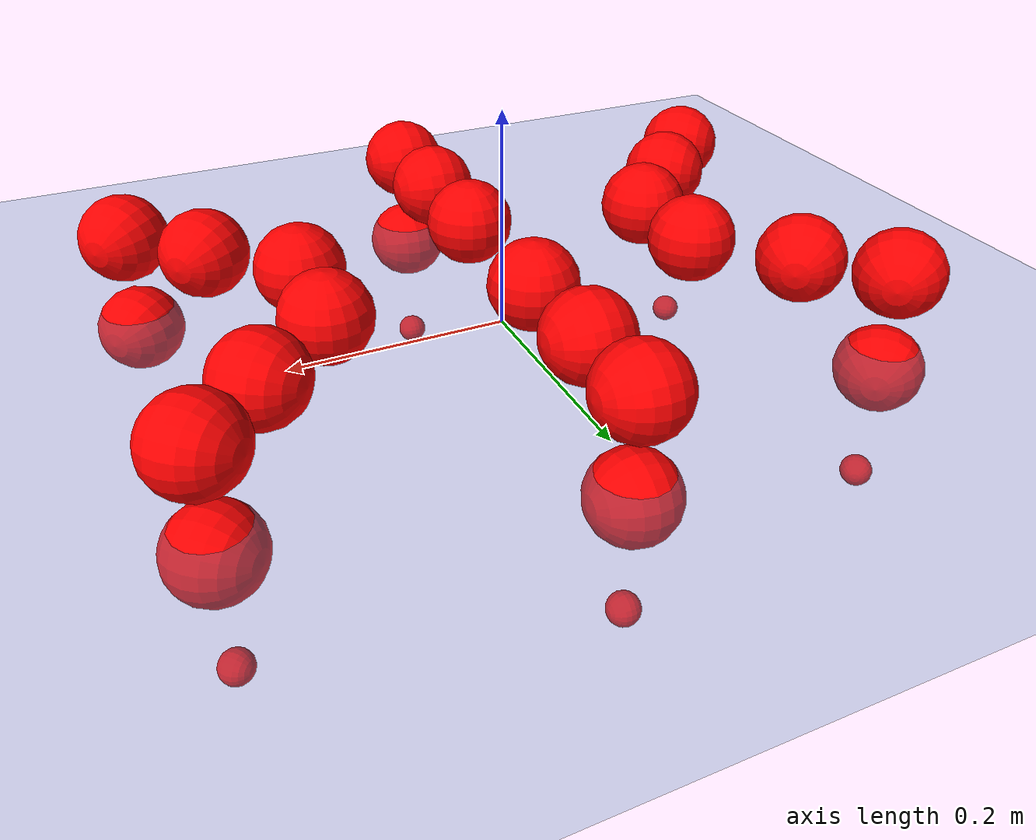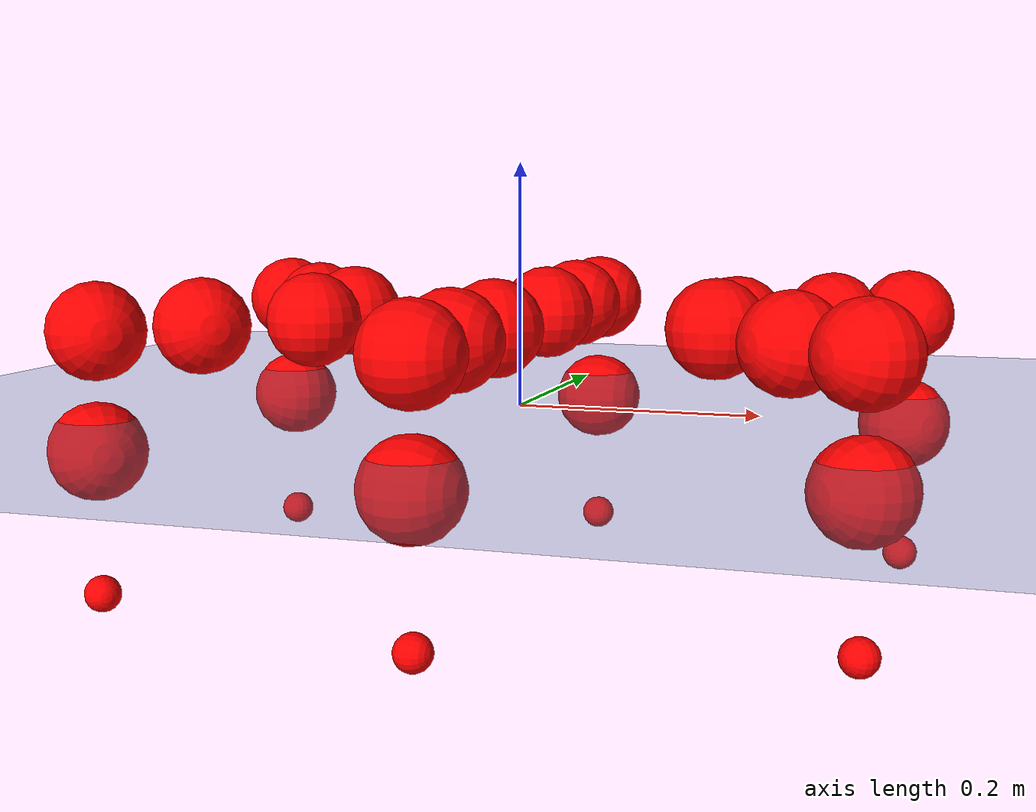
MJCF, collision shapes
<mujoco model="Golem">
  <compiler angle="radian" assetdir="assets" balanceinertia="true" inertiafromgeom="false"/>

  <option timestep="0.005" density="1.2" viscosity="2e-05"/>

  <size nkey="1"/>

  <visual>
    <quality shadowsize="8192"/>
    <map shadowclip="0.5"/>
  </visual>

  <default>
    <default class="/">
      <joint armature="0.01" damping="0.01" frictionloss="0.01"/>
      <geom contype="0" conaffinity="0" group="1" solref="-1000 -80"/>
      <site size="0.01 0.005 0.005" group="5"/>
      <general forcelimited="true" biastype="affine" gainprm="25" biasprm="0 -25 -0.5"/>
      <default class="visual">
        <geom type="mesh" group="2"/>
      </default>
      <default class="collision">
        <geom group="3"/>
      </default>
      <default class="foot">
        <geom size="0.01 0 0" condim="6" group="4" priority="1" solimp="0.015 1 0.01"/>
      </default>
      <default class="reward_collision_sphere">
        <geom group="5" rgba="1 0 0 1"/>
      </default>
    </default>
  </default>

  <asset>
    <texture type="skybox" colorspace="auto" name="//unnamed_texture_0" builtin="gradient" rgb1="0.95 0.95 0.95" rgb2="0.95 0.95 0.95" width="100" height="600"/>
    <texture type="2d" colorspace="auto" name="texplane" builtin="checker" rgb1="0.345 0.575 0.748" rgb2="0.345 0.575 0.748" markrgb="1 1 1" width="512" height="512"/>
    <material name="MatPlane" class="/" texture="texplane" texuniform="true" texrepeat="2 2" specular="0.9"/>
    <mesh name="body" class="/" file="body.stl" scale="0.001 0.001 0.001"/>
    <mesh name="coxa" class="/" file="coxa.stl" scale="0.001 0.001 0.001"/>
    <mesh name="femur" class="/" file="femur.stl" scale="0.001 0.001 0.001"/>
    <mesh name="tibia" class="/" file="tibia.stl" scale="0.001 0.001 0.001"/>
    <mesh name="tarsus" class="/" file="tarsus.stl" scale="0.001 0.001 0.001"/>
  </asset>

  <worldbody>
    <geom name="floor" class="/" size="100 100 0.125" type="plane" group="0" material="MatPlane"/>
    <light name="toplight_shadow" class="/" pos="0 0 5" dir="0.0990148 0.0990148 -0.990148" type="directional" ambient="0.04 0.04 0.04" diffuse="0.55 0.55 0.55" specular="0.12 0.12 0.12"/>
    <light name="toplight_fill" class="/" pos="0 0 5" dir="0.0990148 0.0990148 -0.990148" type="directional" castshadow="false" ambient="0.04 0.04 0.04" diffuse="0.3 0.3 0.3" specular="0.08 0.08 0.08"/>
    <body name="trunk" pos="0.00175916 -0.000446202 -0.00069285" quat="1 1.58079e-05 5.51082e-06 1.59253e-05">
      <inertial pos="-8.13598e-05 -0.0001102 -0.00301949" quat="0.999999 -0.000308906 -0.000924034 -0.000531458" mass="3.47804" diaginertia="0.0143782 0.00257811 0.0172912"/>
      <joint name="//unnamed_joint_0" type="free"/>
      <geom name="//unnamed_geom_1" class="/" pos="0 0 0.0714893" quat="1 0 0 0" type="mesh" rgba="0.9 0.9 0.9 1" mesh="body"/>
      <site name="imu" class="/" pos="0.147328 0.00629864 0.107967" size="0.00987301"/>
      <camera name="track" class="/" pos="0 -1.53416 0" quat="0.707107 0.707107 0 0" mode="trackcom"/>
      <camera name="ego_camera" class="/" pos="0.140115 0 0.111702" quat="-0.5 -0.5 0.5 0.5"/>
      <body name="coxa_RR" pos="-0.192947 -0.0639759 0.0708041" quat="0.382722 0.000210874 5.30575e-05 -0.923864">
        <inertial pos="0.000106992 -0.00191447 0.00155734" quat="1 -0.000293777 0.00086496 0.000330382" mass="0.187837" diaginertia="0.0145336 0.00265014 0.0172903"/>
        <joint name="coxa_joint_RR" class="/" pos="0 0 0" axis="0.00618732 0.00366013 -0.999974" range="-3.14041 3.14117" armature="0.00942097" damping="0" frictionloss="0.00991987"/>
        <geom name="//unnamed_geom_2" class="/" type="mesh" rgba="0.2 0.2 0.2 1" mesh="coxa"/>
        <geom name="//unnamed_geom_3" class="reward_collision_sphere" size="0.0394921" pos="-0.0323342 0 0"/>
        <body name="femur_RR" pos="0.0628185 0.000627308 -0.000858534" quat="0.500106 -0.499854 0.50001 0.50003">
          <inertial pos="0.000896348 0.000902906 0.000305044" quat="0.999992 0.00393811 -2.81459e-05 -0.000755133" mass="0.192373" diaginertia="0.0145409 0.00263093 0.0178533"/>
          <joint name="femur_joint_RR" class="/" pos="0 0 0" axis="-0.00444004 -0.000230398 -0.99999" range="-3.16366 3.13622" armature="0.0101393" damping="0.000498652" frictionloss="0.0103422"/>
          <geom name="//unnamed_geom_4" class="/" type="mesh" rgba="0.9 0.9 0.9 1" mesh="femur"/>
          <geom name="//unnamed_geom_5" class="reward_collision_sphere" size="0.0394921"/>
          <body name="tibia_RR" pos="1.64471e-05 -0.0853732 0.00231645" quat="0.000603729 1 0.000178019 -0.000579357">
            <inertial pos="-0.00115542 0.000401003 5.2302e-05" quat="0.999999 -0.000515186 -0.000872352 0.000922742" mass="0.194957" diaginertia="0.0145211 0.0026899 0.0175376"/>
            <joint name="tibia_joint_RR" class="/" pos="0 0 0" axis="-0.000413736 -0.00425089 0.999991" range="-3.15867 3.13191" armature="0.00974624" damping="0.00326543" frictionloss="0.00990266"/>
            <geom name="//unnamed_geom_6" class="/" type="mesh" rgba="0.2 0.2 0.2 1" mesh="tibia"/>
            <geom name="//unnamed_geom_7" class="reward_collision_sphere" size="0.0394921"/>
            <body name="tarsus_RR" pos="0.0954798 0.00149651 0.000976953" quat="1 2.78354e-05 2.04111e-05 -3.51642e-05">
              <inertial pos="0.0670078 0.00048211 -0.000951429" quat="0.49857 0.501708 0.500513 0.499202" mass="0.191203" diaginertia="0.01438 0.00261443 0.0172154"/>
              <joint name="tarsus_joint_RR" class="/" pos="0 0 0" axis="-0.006736 0.00108451 0.999977" stiffness="0.00120382" range="-3.16134 3.1351" armature="0.0101741" damping="0.0388628" frictionloss="0.0103085"/>
              <geom name="//unnamed_geom_8" class="/" type="mesh" rgba="0.9 0.9 0.9 1" mesh="tarsus"/>
              <geom name="foot_1" class="foot" size="0.00976166" pos="0.120714 0 0" quat="0 -0.707107 0 0.707107"/>
              <geom name="//unnamed_geom_10" class="reward_collision_sphere" size="0.0394921"/>
              <geom name="//unnamed_geom_11" class="reward_collision_sphere" size="0.0148095" pos="0.115864 0 0"/>
              <site name="foot_1" class="foot" pos="0.120714 0 0" quat="0 -0.707107 0 0.707107" size="0.00987301"/>
            </body>
          </body>
        </body>
      </body>
      <body name="coxa_RM" pos="-0.000518464 -0.102945 0.0717174" quat="0.707051 7.13478e-05 3.74008e-05 -0.707162">
        <inertial pos="0.000491817 0.000150364 0.00162836" quat="0.999989 -0.00126815 -0.000390768 -0.00452581" mass="0.19504" diaginertia="0.014694 0.00259639 0.017404"/>
        <joint name="coxa_joint_RM" class="/" pos="0 0 0" axis="0.00188747 0.00192567 -0.999996" range="-3.11861 3.14205" armature="0.0098139" damping="0.00615906" frictionloss="0.00878282"/>
        <geom name="//unnamed_geom_12" class="/" type="mesh" rgba="0.2 0.2 0.2 1" mesh="coxa"/>
        <geom name="//unnamed_geom_13" class="reward_collision_sphere" size="0.0394921" pos="-0.0323342 0 0"/>
        <body name="femur_RM" pos="0.0623952 0.000300456 0.000233383" quat="0.499515 -0.500122 0.499781 0.500582">
          <inertial pos="-0.000326637 0.000799284 0.000191204" quat="0.999989 -0.00381357 -0.000936295 -0.00272086" mass="0.197345" diaginertia="0.0149172 0.00269355 0.0178085"/>
          <joint name="femur_joint_RM" class="/" pos="0 0 0" axis="-0.00122161 0.00247521 -0.999996" range="-3.12975 3.13752" armature="0.0103284" damping="0.0110471" frictionloss="0.00982609"/>
          <geom name="//unnamed_geom_14" class="/" type="mesh" rgba="0.9 0.9 0.9 1" mesh="femur"/>
          <geom name="//unnamed_geom_15" class="reward_collision_sphere" size="0.0394921"/>
          <body name="tibia_RM" pos="0.000596525 -0.0822157 0.00135875" quat="-1.55535e-05 1 3.33528e-05 -9.60987e-05">
            <inertial pos="0.000116343 -0.00208761 -0.000168637" quat="0.999978 0.000909087 -0.00118562 0.00651336" mass="0.191876" diaginertia="0.0147793 0.0027558 0.0175348"/>
            <joint name="tibia_joint_RM" class="/" pos="0 0 0" axis="0.000643152 -0.00145767 0.999999" range="-3.1667 3.18281" armature="0.00981098" damping="0.0122786" frictionloss="0.00972339"/>
            <geom name="//unnamed_geom_16" class="/" type="mesh" rgba="0.2 0.2 0.2 1" mesh="tibia"/>
            <geom name="//unnamed_geom_17" class="reward_collision_sphere" size="0.0394921"/>
            <body name="tarsus_RM" pos="0.0941767 0.000259007 0.00045589" quat="1 -7.7006e-05 0.000153835 5.5824e-05">
              <inertial pos="0.0641771 0.000572882 0.000784803" quat="0.504567 0.492205 0.500965 0.502176" mass="0.196947" diaginertia="0.0143216 0.00267034 0.0172529"/>
              <joint name="tarsus_joint_RM" class="/" pos="0 0 0" axis="-2.5818e-05 3.06501e-05 1" range="-3.1436 3.1514" armature="0.0093865" damping="0.00559017" frictionloss="0.00992746"/>
              <geom name="//unnamed_geom_18" class="/" type="mesh" rgba="0.9 0.9 0.9 1" mesh="tarsus"/>
              <geom name="foot_2" class="foot" size="0.00966569" pos="0.120714 0 0" quat="0 -0.707107 0 0.707107"/>
              <geom name="//unnamed_geom_20" class="reward_collision_sphere" size="0.0394921"/>
              <geom name="//unnamed_geom_21" class="reward_collision_sphere" size="0.0148095" pos="0.115864 0 0"/>
              <site name="foot_2" class="foot" pos="0.120714 0 0" quat="0 -0.707107 0 0.707107" size="0.00987301"/>
            </body>
          </body>
        </body>
      </body>
      <body name="coxa_RF" pos="0.192402 -0.0619692 0.073494" quat="0.923776 0.000209332 1.79809e-05 -0.382933">
        <inertial pos="0.00085182 -0.000660967 0.000132901" quat="1 -2.21323e-05 -0.000318555 0.000260395" mass="0.193268" diaginertia="0.0145215 0.00263506 0.0176875"/>
        <joint name="coxa_joint_RF" class="/" pos="0 0 0" axis="0.00380956 0.00369609 -0.999986" range="-3.14165 3.12955" armature="0.0103711" damping="0.0121291" frictionloss="0.0100277"/>
        <geom name="//unnamed_geom_22" class="/" type="mesh" rgba="0.2 0.2 0.2 1" mesh="coxa"/>
        <geom name="//unnamed_geom_23" class="reward_collision_sphere" size="0.0394921" pos="-0.0323342 0 0"/>
        <body name="femur_RF" pos="0.063536 0.000708467 -0.00195414" quat="0.500186 -0.500106 0.499625 0.500083">
          <inertial pos="-0.000868875 -4.59693e-05 -4.08052e-05" quat="0.999988 -0.00263166 -0.00221579 -0.00353423" mass="0.194402" diaginertia="0.0145424 0.00269743 0.0179224"/>
          <joint name="femur_joint_RF" class="/" pos="0 0 0" axis="-0.000651541 0.000187241 -1" range="-3.17663 3.12141" armature="0.00928" damping="0.0126253" frictionloss="0.0101704"/>
          <geom name="//unnamed_geom_24" class="/" type="mesh" rgba="0.9 0.9 0.9 1" mesh="femur"/>
          <geom name="//unnamed_geom_25" class="reward_collision_sphere" size="0.0394921"/>
          <body name="tibia_RF" pos="-0.00123502 -0.0836009 0.00173569" quat="-7.03967e-06 1 -5.34191e-06 4.5335e-06">
            <inertial pos="-0.00190707 0.000144741 0.00021774" quat="1 6.14978e-05 0.000142721 0.000244639" mass="0.195765" diaginertia="0.0145947 0.00264129 0.0174069"/>
            <joint name="tibia_joint_RF" class="/" pos="0 0 0" axis="-0.00138642 -0.00763 0.99997" range="-3.12886 3.09995" armature="0.0103074" damping="0.0121593" frictionloss="0.00991938"/>
            <geom name="//unnamed_geom_26" class="/" type="mesh" rgba="0.2 0.2 0.2 1" mesh="tibia"/>
            <geom name="//unnamed_geom_27" class="reward_collision_sphere" size="0.0394921"/>
            <body name="tarsus_RF" pos="0.0941944 0.00143276 0.00136543" quat="1 -9.12722e-05 0.000504233 0.000722599">
              <inertial pos="0.0648214 5.411e-06 -0.000238136" quat="0.500025 0.500019 0.500272 0.499684" mass="0.190901" diaginertia="0.0145395 0.00265237 0.0172476"/>
              <joint name="tarsus_joint_RF" class="/" pos="0 0 0" axis="-0.00233448 -0.000694094 0.999997" range="-3.11968 3.14703" armature="0.00967137" damping="0.000805147" frictionloss="0.0102686"/>
              <geom name="//unnamed_geom_28" class="/" type="mesh" rgba="0.9 0.9 0.9 1" mesh="tarsus"/>
              <geom name="foot_3" class="foot" size="0.0100085" pos="0.120714 0 0" quat="0 -0.707107 0 0.707107"/>
              <geom name="//unnamed_geom_30" class="reward_collision_sphere" size="0.0394921"/>
              <geom name="//unnamed_geom_31" class="reward_collision_sphere" size="0.0148095" pos="0.115864 0 0"/>
              <site name="foot_3" class="foot" pos="0.120714 0 0" quat="0 -0.707107 0 0.707107" size="0.00987301"/>
            </body>
          </body>
        </body>
      </body>
      <body name="coxa_LR" pos="-0.192999 0.066805 0.0710796" quat="0.382727 1.40437e-05 -0.00011202 0.923862">
        <inertial pos="-0.00141144 -0.00108146 -0.00141007" quat="0.999955 0.000461101 -0.00321679 -0.00895999" mass="0.193072" diaginertia="0.0145509 0.00273762 0.0172635"/>
        <joint name="coxa_joint_LR" class="/" pos="0 0 0" axis="-0.00278461 -0.0114551 -0.999931" range="-3.12603 3.15337" armature="0.0101124" damping="0.0167273" frictionloss="0.00950114"/>
        <geom name="//unnamed_geom_32" class="/" type="mesh" rgba="0.2 0.2 0.2 1" mesh="coxa"/>
        <geom name="//unnamed_geom_33" class="reward_collision_sphere" size="0.0394921" pos="-0.0323342 0 0"/>
        <body name="femur_LR" pos="0.0652922 -0.00222952 -0.00184807" quat="0.500165 -0.49983 0.500096 0.499909">
          <inertial pos="0.00073355 0.000344969 -0.000431078" quat="0.999995 0.00230416 0.000632487 -0.00201641" mass="0.192487" diaginertia="0.0144687 0.00267179 0.0172325"/>
          <joint name="femur_joint_LR" class="/" pos="0 0 0" axis="-7.9535e-05 -0.000149814 1" range="-3.15505 3.13254" armature="0.00980659" damping="0.0131677" frictionloss="0.00886947"/>
          <geom name="//unnamed_geom_34" class="/" type="mesh" rgba="0.9 0.9 0.9 1" mesh="femur"/>
          <geom name="//unnamed_geom_35" class="reward_collision_sphere" size="0.0394921"/>
          <body name="tibia_LR" pos="8.7519e-05 -0.0824886 -0.000326603" quat="-9.66274e-05 1 -0.000408538 0.00065084">
            <inertial pos="-0.000119533 0.000269686 3.5458e-05" quat="0.999999 6.33821e-05 -0.00112774 0.000902147" mass="0.188373" diaginertia="0.0144147 0.00265145 0.0170958"/>
            <joint name="tibia_joint_LR" class="/" pos="0 0 0" axis="0.00575894 0.000292968 -0.999983" range="-3.1243 3.12473" armature="0.00968311" damping="0.00892259" frictionloss="0.0100654"/>
            <geom name="//unnamed_geom_36" class="/" type="mesh" rgba="0.2 0.2 0.2 1" mesh="tibia"/>
            <geom name="//unnamed_geom_37" class="reward_collision_sphere" size="0.0394921"/>
            <body name="tarsus_LR" pos="0.0944713 -0.000840241 0.00207139" quat="1 0.000245116 -0.000839016 0.000269281">
              <inertial pos="0.0674537 0.000306555 -0.00184566" quat="0.5005 0.500054 0.499844 0.499601" mass="0.190871" diaginertia="0.0144179 0.00261705 0.0171193"/>
              <joint name="tarsus_joint_LR" class="/" pos="0 0 0" axis="0.00213829 0.00162355 -0.999996" range="-3.15953 3.11843" armature="0.010136" damping="0" frictionloss="0.00940336"/>
              <geom name="//unnamed_geom_38" class="/" type="mesh" rgba="0.9 0.9 0.9 1" mesh="tarsus"/>
              <geom name="foot_4" class="foot" size="0.00955926" pos="0.120714 0 0" quat="0.707107 0 -0.707107 0"/>
              <geom name="//unnamed_geom_40" class="reward_collision_sphere" size="0.0394921"/>
              <geom name="//unnamed_geom_41" class="reward_collision_sphere" size="0.0148095" pos="0.115864 0 0"/>
              <site name="foot_4" class="foot" pos="0.120714 0 0" quat="0.707107 0 -0.707107 0" size="0.00987301"/>
            </body>
          </body>
        </body>
      </body>
      <body name="coxa_LM" pos="0.000148513 0.100064 0.0726987" quat="0.707002 0.000153703 0.000149589 0.707212">
        <inertial pos="-0.000407671 0.000961936 0.00123269" quat="1 0.000290657 -0.000805677 2.83081e-05" mass="0.19492" diaginertia="0.0148425 0.00270485 0.0176345"/>
        <joint name="coxa_joint_LM" class="/" pos="0 0 0" axis="0.000529282 0.000528147 -1" range="-3.11925 3.14457" armature="0.00943723" damping="0.00367676" frictionloss="0.0102271"/>
        <geom name="//unnamed_geom_42" class="/" type="mesh" rgba="0.2 0.2 0.2 1" mesh="coxa"/>
        <geom name="//unnamed_geom_43" class="reward_collision_sphere" size="0.0394921" pos="-0.0323342 0 0"/>
        <body name="femur_LM" pos="0.060901 0.000502225 0.000543658" quat="0.499977 -0.499961 0.500061 0.500002">
          <inertial pos="-0.00100514 -0.00118626 0.00208484" quat="0.999962 1.81348e-05 0.000985414 0.00861365" mass="0.191092" diaginertia="0.0142977 0.00256328 0.0170428"/>
          <joint name="femur_joint_LM" class="/" pos="0 0 0" axis="0.00138383 0.00229087 0.999996" range="-3.14301 3.12376" armature="0.00963472" damping="0.00489996" frictionloss="0.00998331"/>
          <geom name="//unnamed_geom_44" class="/" type="mesh" rgba="0.9 0.9 0.9 1" mesh="femur"/>
          <geom name="//unnamed_geom_45" class="reward_collision_sphere" size="0.0394921"/>
          <body name="tibia_LM" pos="0.00106526 -0.0792795 -0.0005633" quat="-3.37251e-05 0.999999 -0.000747369 -0.000830081">
            <inertial pos="-0.000124936 -0.00281584 -0.000912258" quat="1 0.000469127 -5.43337e-05 -7.86421e-05" mass="0.194719" diaginertia="0.0143702 0.00269974 0.0171836"/>
            <joint name="tibia_joint_LM" class="/" pos="0 0 0" axis="-0.00160142 -0.000432199 -0.999999" range="-3.14029 3.12366" armature="0.0105111" damping="0" frictionloss="0.0102226"/>
            <geom name="//unnamed_geom_46" class="/" type="mesh" rgba="0.2 0.2 0.2 1" mesh="tibia"/>
            <geom name="//unnamed_geom_47" class="reward_collision_sphere" size="0.0394921"/>
            <body name="tarsus_LM" pos="0.0957822 -0.000627668 -0.000881803" quat="0.999999 -0.000149469 -0.000915397 -0.000531383">
              <inertial pos="0.0648673 0.000626214 0.000697627" quat="0.499839 0.500058 0.500112 0.499991" mass="0.187569" diaginertia="0.0143475 0.00259343 0.0170229"/>
              <joint name="tarsus_joint_LM" class="/" pos="0 0 0" axis="-0.00136399 -0.00196869 -0.999997" range="-3.09785 3.1304" armature="0.0105269" damping="0" frictionloss="0.00937886"/>
              <geom name="//unnamed_geom_48" class="/" type="mesh" rgba="0.9 0.9 0.9 1" mesh="tarsus"/>
              <geom name="foot_5" class="foot" size="0.00955184" pos="0.120714 0 0" quat="0.707107 0 -0.707107 0"/>
              <geom name="//unnamed_geom_50" class="reward_collision_sphere" size="0.0394921"/>
              <geom name="//unnamed_geom_51" class="reward_collision_sphere" size="0.0148095" pos="0.115864 0 0"/>
              <site name="foot_5" class="foot" pos="0.120714 0 0" quat="0.707107 0 -0.707107 0" size="0.00987301"/>
            </body>
          </body>
        </body>
      </body>
      <body name="coxa_LF" pos="0.193756 0.0661209 0.0696501" quat="0.923877 8.39829e-05 -0.000162803 0.38269">
        <inertial pos="8.5783e-05 0.000423523 0.00132839" quat="1 0.000166593 0.000327052 0.000300422" mass="0.189269" diaginertia="0.0142462 0.00259096 0.0168949"/>
        <joint name="coxa_joint_LF" class="/" pos="0 0 0" axis="-0.000365518 -0.00495623 -0.999988" range="-3.11963 3.17853" armature="0.0104792" damping="0.000822843" frictionloss="0.00988406"/>
        <geom name="//unnamed_geom_52" class="/" type="mesh" rgba="0.2 0.2 0.2 1" mesh="coxa"/>
        <geom name="//unnamed_geom_53" class="reward_collision_sphere" size="0.0394921" pos="-0.0323342 0 0"/>
        <body name="femur_LF" pos="0.06391 -0.000978144 7.96814e-05" quat="0.499345 -0.500115 0.499997 0.500542">
          <inertial pos="0.00193854 2.09239e-05 0.000147514" quat="0.999996 0.00279095 0.000396131 -0.000546539" mass="0.193854" diaginertia="0.0146421 0.00268795 0.0175859"/>
          <joint name="femur_joint_LF" class="/" pos="0 0 0" axis="0.0043175 0.00137547 0.99999" range="-3.14514 3.13897" armature="0.0104533" damping="0.00600698" frictionloss="0.0101054"/>
          <geom name="//unnamed_geom_54" class="/" type="mesh" rgba="0.9 0.9 0.9 1" mesh="femur"/>
          <geom name="//unnamed_geom_55" class="reward_collision_sphere" size="0.0394921"/>
          <body name="tibia_LF" pos="0.000681843 -0.0816532 0.000839403" quat="-0.000295859 1 -0.000153692 -0.000217016">
            <inertial pos="-8.96068e-05 0.000583737 -0.000983751" quat="0.999994 -0.00134172 0.00311972 0.000144708" mass="0.194959" diaginertia="0.0146973 0.00267405 0.0174101"/>
            <joint name="tibia_joint_LF" class="/" pos="0 0 0" axis="0.000158062 -0.00151194 -0.999999" range="-3.14209 3.14692" armature="0.0100397" damping="0" frictionloss="0.00947772"/>
            <geom name="//unnamed_geom_56" class="/" type="mesh" rgba="0.2 0.2 0.2 1" mesh="tibia"/>
            <geom name="//unnamed_geom_57" class="reward_collision_sphere" size="0.0394921"/>
            <body name="tarsus_LF" pos="0.0943939 -0.000174888 -0.000768182" quat="1 0.00051984 5.40758e-05 -0.000661576">
              <inertial pos="0.064846 0.00069598 0.000929878" quat="0.499237 0.499442 0.500323 0.500995" mass="0.189215" diaginertia="0.0144927 0.00265783 0.0170659"/>
              <joint name="tarsus_joint_LF" class="/" pos="0 0 0" axis="-0.00524884 -3.24844e-05 -0.999986" stiffness="0.0256913" range="-3.14978 3.11962" armature="0.00979679" damping="0.0288249" frictionloss="0.0096871"/>
              <geom name="//unnamed_geom_58" class="/" type="mesh" rgba="0.9 0.9 0.9 1" mesh="tarsus"/>
              <geom name="foot_6" class="foot" size="0.0100476" pos="0.120714 0 0" quat="0.707107 0 -0.707107 0"/>
              <geom name="//unnamed_geom_60" class="reward_collision_sphere" size="0.0394921"/>
              <geom name="//unnamed_geom_61" class="reward_collision_sphere" size="0.0148095" pos="0.115864 0 0"/>
              <site name="foot_6" class="foot" pos="0.120714 0 0" quat="0.707107 0 -0.707107 0" size="0.00987301"/>
            </body>
          </body>
        </body>
      </body>
    </body>
  </worldbody>

  <contact>
    <pair class="/" geom1="floor" geom2="foot_1" name="//unnamed_contact_0"/>
    <pair class="/" geom1="floor" geom2="foot_2" name="//unnamed_contact_1"/>
    <pair class="/" geom1="floor" geom2="foot_3" name="//unnamed_contact_2"/>
    <pair class="/" geom1="floor" geom2="foot_4" name="//unnamed_contact_3"/>
    <pair class="/" geom1="floor" geom2="foot_5" name="//unnamed_contact_4"/>
    <pair class="/" geom1="floor" geom2="foot_6" name="//unnamed_contact_5"/>
  </contact>

  <actuator>
    <general name="coxa_joint_RR" class="/" joint="coxa_joint_RR" forcerange="-7.35722 7.35722" gainprm="23.7707" biasprm="0 -23.7707 -0.519958"/>
    <general name="femur_joint_RR" class="/" joint="femur_joint_RR" forcerange="-7.25201 7.25201" gainprm="23.7707" biasprm="0 -23.7707 -0.519958"/>
    <general name="tibia_joint_RR" class="/" joint="tibia_joint_RR" forcerange="-7.23318 7.23318" gainprm="23.7707" biasprm="0 -23.7707 -0.519958"/>
    <general name="tarsus_joint_RR" class="/" joint="tarsus_joint_RR" forcerange="-7.34429 7.34429" gainprm="23.7707" biasprm="0 -23.7707 -0.519958"/>
    <general name="coxa_joint_RM" class="/" joint="coxa_joint_RM" forcerange="-6.69326 6.69326" gainprm="23.7707" biasprm="0 -23.7707 -0.519958"/>
    <general name="femur_joint_RM" class="/" joint="femur_joint_RM" forcerange="-7.22184 7.22184" gainprm="23.7707" biasprm="0 -23.7707 -0.519958"/>
    <general name="tibia_joint_RM" class="/" joint="tibia_joint_RM" forcerange="-7.29489 7.29489" gainprm="23.7707" biasprm="0 -23.7707 -0.519958"/>
    <general name="tarsus_joint_RM" class="/" joint="tarsus_joint_RM" forcerange="-7.3487 7.3487" gainprm="23.7707" biasprm="0 -23.7707 -0.519958"/>
    <general name="coxa_joint_RF" class="/" joint="coxa_joint_RF" forcerange="-6.7649 6.7649" gainprm="23.7707" biasprm="0 -23.7707 -0.519958"/>
    <general name="femur_joint_RF" class="/" joint="femur_joint_RF" forcerange="-7.38192 7.38192" gainprm="23.7707" biasprm="0 -23.7707 -0.519958"/>
    <general name="tibia_joint_RF" class="/" joint="tibia_joint_RF" forcerange="-6.6558 6.6558" gainprm="23.7707" biasprm="0 -23.7707 -0.519958"/>
    <general name="tarsus_joint_RF" class="/" joint="tarsus_joint_RF" forcerange="-7.00135 7.00135" gainprm="23.7707" biasprm="0 -23.7707 -0.519958"/>
    <general name="coxa_joint_LR" class="/" joint="coxa_joint_LR" forcerange="-7.19056 7.19056" gainprm="23.7707" biasprm="0 -23.7707 -0.519958"/>
    <general name="femur_joint_LR" class="/" joint="femur_joint_LR" forcerange="-7.20469 7.20469" gainprm="23.7707" biasprm="0 -23.7707 -0.519958"/>
    <general name="tibia_joint_LR" class="/" joint="tibia_joint_LR" forcerange="-7.21601 7.21601" gainprm="23.7707" biasprm="0 -23.7707 -0.519958"/>
    <general name="tarsus_joint_LR" class="/" joint="tarsus_joint_LR" forcerange="-6.95208 6.95208" gainprm="23.7707" biasprm="0 -23.7707 -0.519958"/>
    <general name="coxa_joint_LM" class="/" joint="coxa_joint_LM" forcerange="-7.45346 7.45346" gainprm="23.7707" biasprm="0 -23.7707 -0.519958"/>
    <general name="femur_joint_LM" class="/" joint="femur_joint_LM" forcerange="-7.18508 7.18508" gainprm="23.7707" biasprm="0 -23.7707 -0.519958"/>
    <general name="tibia_joint_LM" class="/" joint="tibia_joint_LM" forcerange="-7.07909 7.07909" gainprm="23.7707" biasprm="0 -23.7707 -0.519958"/>
    <general name="tarsus_joint_LM" class="/" joint="tarsus_joint_LM" forcerange="-7.21854 7.21854" gainprm="23.7707" biasprm="0 -23.7707 -0.519958"/>
    <general name="coxa_joint_LF" class="/" joint="coxa_joint_LF" forcerange="-6.63454 6.63454" gainprm="23.7707" biasprm="0 -23.7707 -0.519958"/>
    <general name="femur_joint_LF" class="/" joint="femur_joint_LF" forcerange="-7.11824 7.11824" gainprm="23.7707" biasprm="0 -23.7707 -0.519958"/>
    <general name="tibia_joint_LF" class="/" joint="tibia_joint_LF" forcerange="-7.14304 7.14304" gainprm="23.7707" biasprm="0 -23.7707 -0.519958"/>
    <general name="tarsus_joint_LF" class="/" joint="tarsus_joint_LF" forcerange="-7.37303 7.37303" gainprm="23.7707" biasprm="0 -23.7707 -0.519958"/>
  </actuator>

  <sensor>
    <gyro site="imu" name="imu_angular_velocity"/>
    <velocimeter site="imu" name="imu_linear_velocity"/>
    <framelinvel objtype="site" objname="foot_1" name="foot_1_global_linear_velocity"/>
    <framelinvel objtype="site" objname="foot_2" name="foot_2_global_linear_velocity"/>
    <framelinvel objtype="site" objname="foot_3" name="foot_3_global_linear_velocity"/>
    <framelinvel objtype="site" objname="foot_4" name="foot_4_global_linear_velocity"/>
    <framelinvel objtype="site" objname="foot_5" name="foot_5_global_linear_velocity"/>
    <framelinvel objtype="site" objname="foot_6" name="foot_6_global_linear_velocity"/>
  </sensor>

  <keyframe>
    <key name="home" qpos="0 0 0.1457 1 0 0 0 0 0 0 0 0 0 0 0 0 0 0 0 0 0 0 0 0 0 0 0 0 0 0 0"/>
  </keyframe>
</mujoco>
